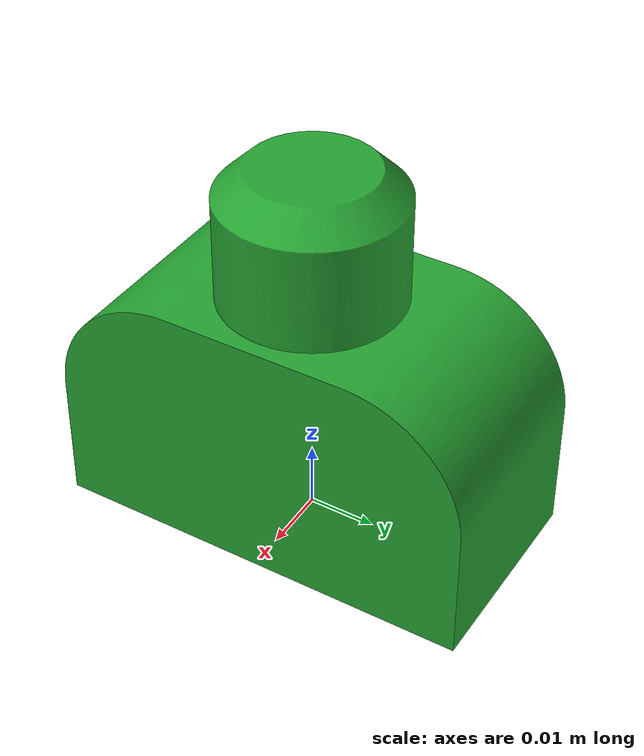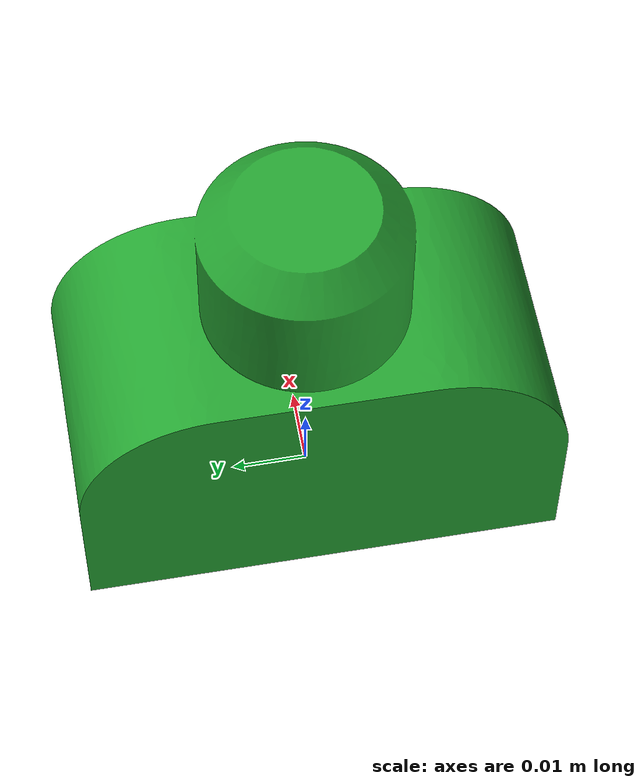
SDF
<?xml version='1.0'?>
<sdf version="1.6">

         <model name="mesh">
             <static>0</static>
             <self_collide>0</self_collide>
             <allow_auto_disable>1</allow_auto_disable>

            <pose>0 0 0 0 -0 0</pose>

             <link name="link">

                 <gravity>1</gravity>
                 <self_collide>0</self_collide>
                 <kinematic>0</kinematic>

                <pose>0 0 0 0 -0 0</pose>

                <inertial>
                    <!-- Volume:  1.1106156000e-05 -->
                    <mass> 1.0 </mass>

                    <!-- Center of mass:  8.2000000000e-07 -2.6000000000e-06  2.5677030000e-02 -->
                    <pose>  8.2000000000e-07 -2.6000000000e-06  2.5677030000e-02 0 0 0 </pose>

                    <!-- Inertia matrix -->
                    <inertia>
                        <ixx>  6.2309494842e-04 </ixx>
                        <ixy> -3.7123555621e-08 </ixy>
                        <ixz> -6.3388268632e-09 </ixz>
                        <iyy>  3.8273563779e-04 </iyy>
                        <iyz> -4.6640799931e-08 </iyz>
                        <izz>  5.2758218955e-04 </izz>
                    </inertia>
                </inertial>

                 <collision name="collision">
                     <!--
                         Maximum number of contacts allowed between two entities.
                         This value overrides the max_contacts element defined in physics.
                     -->
                     <max_contacts>20</max_contacts>

                    <pose>0 0 0 0 -0 0</pose>

                     <geometry>
                         <mesh>
                             <uri>model://X1-Y2-Z2-TWINFILLET/mesh/X1-Y2-Z2-TWINFILLET.stl</uri>
                             <!-- Scaling factor applied to the mesh -->
                             <scale>1.0 1.0 1.0</scale>
                         </mesh>
                     </geometry>
                     <!-- http://sdformat.org/spec?ver=1.6&elem=collision#surface_soft_contact -->
                     <surface></surface>
                 </collision>

                 <visual name="visual">
                     <cast_shadows>1</cast_shadows>
                     <transparency>0</transparency>

                     <pose>0 0 0 0 -0 0</pose>

                     <material>

                         <script>
                             <uri>file://media/materials/scripts/gazebo.material</uri>
                             <name>Gazebo/Green</name>
                         </script>
                         <shader type="vertex">
                           <normal_map>__default__</normal_map>
                         </shader>

                         <lighting>1</lighting>
 		                <ambient>0.15 0.75 0.35 1</ambient>
 		                <diffuse>0.1 0.95 0.25 1</diffuse>
 		                <specular>0.01 0.01 0.01 1</specular>
 		                <emissive>0 0 0 1</emissive>
                     </material>

                     <geometry>
                         <mesh>
                             <uri>model://X1-Y2-Z2-TWINFILLET/mesh/X1-Y2-Z2-TWINFILLET.stl</uri>
                             <!-- Scaling factor applied to the mesh -->
                             <scale>1.0 1.0 1.0</scale>
                         </mesh>
                     </geometry>
                 </visual>
             </link>
         </model>
     </sdf>
